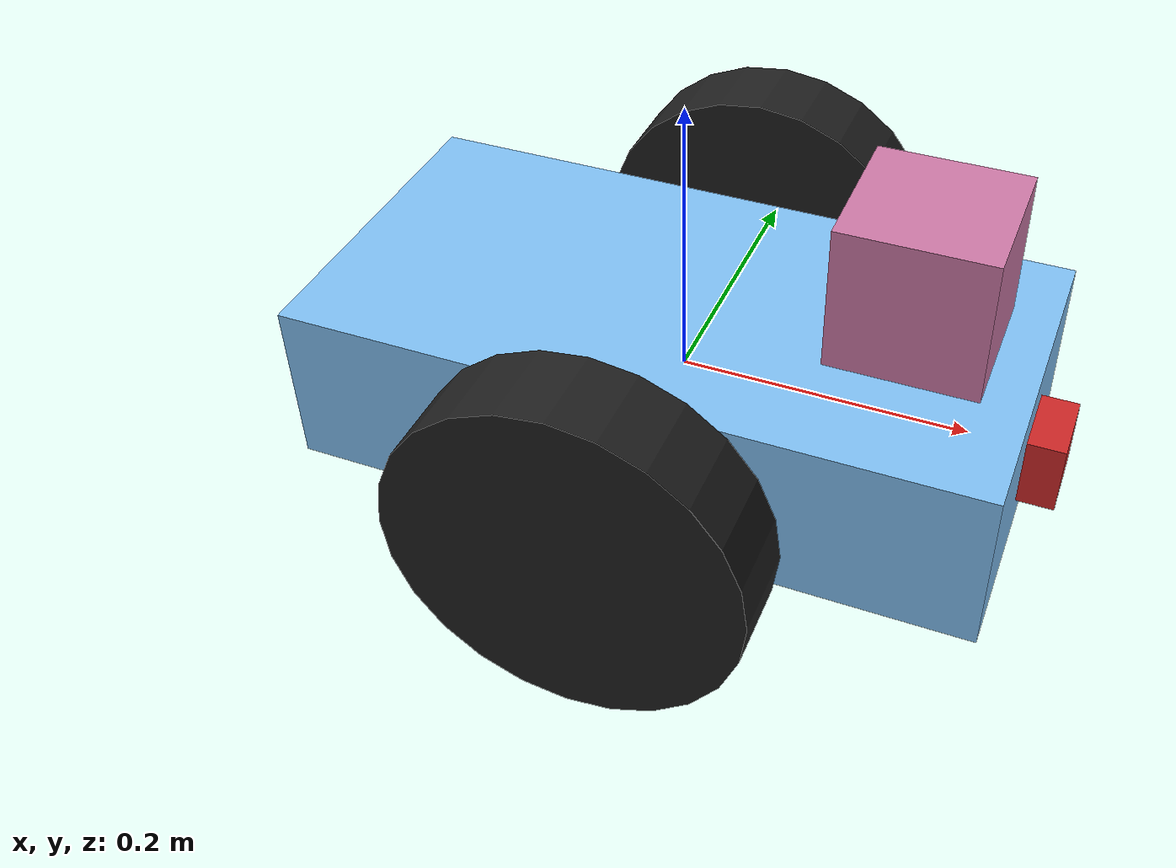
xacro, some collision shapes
<?xml version='1.0'?>
<!-- DEF: robot has core footprint, rectangular chassis, left and right wheels, and front and back casters.    -->
<!--       all six objects have appearances and are connected through joints, creating the entire robot frame. -->
<robot name="my_robot" xmlns:xacro="http://www.ros.org/wiki/xacro">
  <!-- include below will add gazebo file that defines three necessary plug-ins for actuators, camera and lidar -->
  <xacro:include filename="$(find my_robot)/urdf/my_robot.gazebo" />

  <link name="robot_footprint" />

  <joint name="robot_footprint_joint" type="fixed">
    <origin xyz="0 0 0" rpy="0 0 0" />
    <parent link="robot_footprint" />
    <child link="chassis" />
  </joint>

  <!-- central chassis (with casters included) link -->
  <link name="chassis">
    <pose>0 0 0.1 0 0 0</pose>

    <inertial>
      <mass value="15.0" />
      <origin xyz="0.0 0 0" rpy="0 0 0" />
      <inertia
        ixx="0.1" ixy="0" ixz="0"
        iyy="0.1" iyz="0"
        izz="0.1"
      />
    </inertial>

    <!-- main body appearance defintion -->
    <collision name="chassis_collision">
      <origin xyz="0 0 0" rpy="0 0 0" />
      <geometry>
        <box size=".48 .24 .12" />
      </geometry>
    </collision>

    <visual name="chassis_visual">
      <origin xyz="0 0 0" rpy="0 0 0" />
      <geometry>
        <box size=".48 .24 .12" />
      </geometry>
    </visual>

    <!-- back caster appearance definition -->
    <collision name='back_caster_collision'>
      <origin xyz="-0.18 0 -0.06" rpy="0 0 0" />
      <geometry>
        <sphere radius="0.0599" />
      </geometry>
    </collision>

    <visual name='back_caster_visual'>
      <origin xyz="-0.18 0 -0.06" rpy="0 0 0" />
      <geometry>
        <sphere radius="0.06" />
      </geometry>
    </visual>

    <!-- front caster appearance definition -->
    <collision name='front_caster_collision'>
      <origin xyz="0.18 0 -0.06" rpy="0 0 0" />
      <geometry>
        <sphere radius="0.0599" />
      </geometry>
    </collision>

    <visual name='front_caster_visual'>
      <origin xyz="0.18 0 -0.06" rpy="0 0 0" />
      <geometry>
        <sphere radius="0.06" />
      </geometry>
    </visual>
  </link>

  <gazebo reference="chassis">
    <material>Gazebo/SkyBlue</material>
  </gazebo>

  <!-- left continuous wheel definition -->
  <link name="left_wheel">
    <inertial>
      <mass value="5.0" />
      <origin xyz="0 0 0" rpy="0 1.5707 1.5707" />
      <inertia
        ixx="0.1" ixy="0" ixz="0"
        iyy="0.1" iyz="0"
        izz="0.1"
      />
    </inertial>

    <collision name="left_wheel_collision">
      <origin xyz="0 0 0" rpy="0 1.5707 1.5707" />
      <geometry>
        <cylinder radius="0.12" length="0.06" />
      </geometry>
    </collision>

    <visual name="left_wheel_visual">
      <origin xyz="0 0 0" rpy="0 1.5707 1.5707" />
      <geometry>
        <cylinder radius="0.12" length="0.06" />
      </geometry>
    </visual>
  </link>

  <gazebo reference="left_wheel">
    <material>Gazebo/Black</material>
  </gazebo>

  <!-- right continuous wheel definition -->
  <link name="right_wheel">
    <inertial>
      <mass value="5.0" />
      <origin xyz="0 0 0" rpy="0 1.5707 1.5707" />
      <inertia
        ixx="0.1" ixy="0" ixz="0"
        iyy="0.1" iyz="0"
        izz="0.1"
      />
    </inertial>

    <collision name="right_wheel_collision">
      <origin xyz="0 0 0" rpy="0 1.5707 1.5707" />
      <geometry>
        <cylinder radius="0.12" length="0.06" />
      </geometry>
    </collision>

    <visual name="right_wheel_visual">
      <origin xyz="0 0 0" rpy="0 1.5707 1.5707" />
      <geometry>
        <cylinder radius="0.12" length="0.06" />
      </geometry>
    </visual>
  </link>

  <gazebo reference="right_wheel">
    <material>Gazebo/Black</material>
  </gazebo>

  <!-- left wheel joint (connected to chassis) -->
  <joint type="continuous" name="left_wheel_hinge">
    <origin xyz="0 0.18 0" rpy="0 0 0" />
    <child link="left_wheel" />
    <parent link="chassis" />
    <axis xyz="0 1 0" rpy="0 0 0" />
    <limit effort="10000" velocity="1000" />
    <dynamics damping="1.0" friction="1.0" />
  </joint>

  <!-- right wheel joint (connected to chassis) -->
  <joint type="continuous" name="right_wheel_hinge">
    <origin xyz="0 -0.18 0" rpy="0 0 0" />
    <child link="right_wheel" />
    <parent link="chassis" />
    <axis xyz="0 1 0" rpy="0 0 0" />
    <limit effort="10000" velocity="1000" />
    <dynamics damping="1.0" friction="1.0" />
  </joint>

  <!-- camera sensor definition  -->
  <link name="camera">
    <box_inertia x="0.05" y="0.05" z="0.05" m="0.1" />

    <inertial>
      <mass value="0.1" />
      <origin xyz="0 0 0" rpy="0 0 0" />
      <inertia
         ixx="1e-6" ixy="0" ixz="0"
         iyy="1e-6" iyz="0"
         izz="1e-6"
      />
    </inertial>

    <collision name="camera_collision">
      <origin xyz="0 0 0" rpy="0 0 0" />
      <geometry>
        <box size="0.05 0.05 0.05" />
      </geometry>
    </collision>

    <visual name="camera_visual">
      <origin xyz="0 0 0" rpy="0 0 0" />
      <geometry>
        <box size="0.05 0.05 0.05" />
      </geometry>
    </visual>
  </link>

  <gazebo reference="camera">
    <material>Gazebo/Red</material>
  </gazebo>

  <!-- camera joint definition -->
  <joint type="fixed" name="camera_joint">
    <origin xyz="0.24 0 0" rpy="0 0 0" />
    <child link="camera" />
    <parent link="chassis" />
    <axis xyz="0 1 0" rpy="0 0 0" />
  </joint>

  <!-- optical camera joint definition -->
  <joint name="camera_optical_joint" type="fixed">
    <origin xyz="0 0 0" rpy="-1.571 0 -1.571" />
    <parent link="camera" />
    <child link="camera_link_optical" />
  </joint>

  <!-- optical camera definition -->
  <link name="camera_link_optical" />

  <!-- lidar sensor definition -->
  <link name="hokuyo">
    <inertial>
      <mass value="1e-5" />
      <origin xyz="0 0 0" rpy="0 0 0" />
      <inertia
         ixx="1e-6" ixy="0" ixz="0"
         iyy="1e-6" iyz="0"
         izz="1e-6"
      />
    </inertial>

    <collision name="hokuyo_collision">
      <origin xyz="0 0 0" rpy="0 0 0" />
      <geometry>
        <box size="0.1 0.1 0.1" />
      </geometry>
    </collision>

    <visual name="hokuyo_visual">
      <origin xyz="0 0 0" rpy="0 0 0" />
      <geometry>
        <mesh filename="package://my_robot/meshes/hokuyo.dae" />
      </geometry>
    </visual>
  </link>

  <!-- lidar joint definition -->
  <joint type="fixed" name="hokuyo_joint">
    <origin xyz="0.16 0 0.12" rpy="0 0 0" />
    <child link="hokuyo" />
    <parent link="chassis" />
    <axis xyz="0 1 0" rpy="0 0 0" />
  </joint>
</robot>
